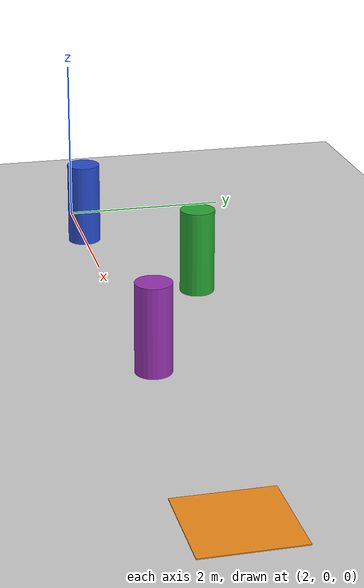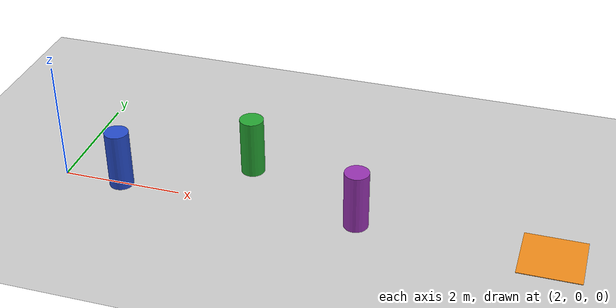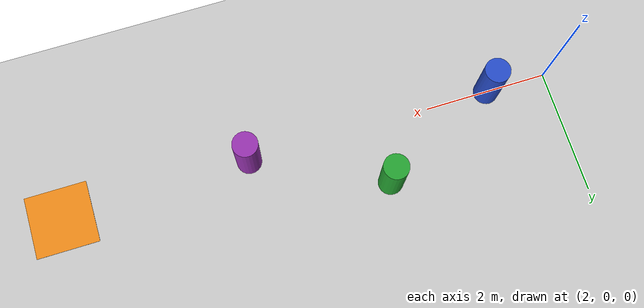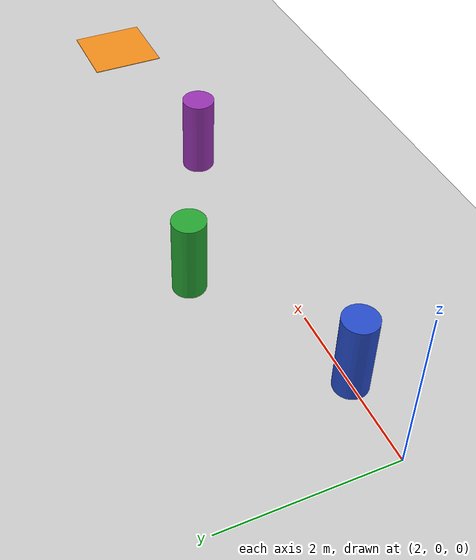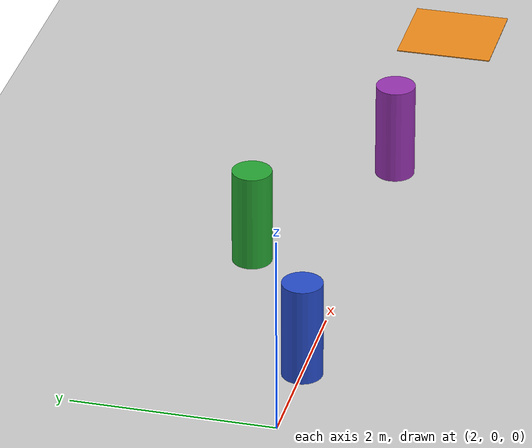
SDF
<sdf version="1.4">
 <world name="default">
  <light name="sun" type="directional">
   <pose>0 0 10 0 -0 0</pose>
   <diffuse>0.8 0.8 0.8 1</diffuse>
   <specular>0.2 0.2 0.2 1</specular>
   <attenuation>
    <range>1000</range>
    <constant>0.9</constant>
    <linear>0.01</linear>
    <quadratic>0.001</quadratic>
   </attenuation>
   <direction>-0.5 0.1 -0.9</direction>
  </light>
  <model name="ground_plane">
   <static>1</static>
   <link name="link">
    <collision name="collision">
     <geometry><plane><normal>0 0 1</normal><size>100 100</size></plane></geometry>
     <surface><friction><ode><mu>100</mu><mu2>50</mu2></ode></friction></surface>
    </collision>
    <visual name="visual">
     <cast_shadows>0</cast_shadows>
     <geometry><plane><normal>0 0 1</normal><size>100 100</size></plane></geometry>
     <material>
      <script><uri>file://media/materials/scripts/gazebo.material</uri><name>Gazebo/Grey</name></script>
     </material>
    </visual>
    <velocity_decay><linear>0</linear><angular>0</angular></velocity_decay>
   </link>
  </model>
  <physics type="ode">
   <max_step_size>0.001</max_step_size>
   <real_time_factor>1</real_time_factor>
   <real_time_update_rate>1000</real_time_update_rate>
   <gravity>0 0 -9.8</gravity>
  </physics>
  <scene><ambient>0.4 0.4 0.4 1</ambient><background>0.7 0.7 0.7 1</background><shadows>1</shadows></scene>
  <model name="unit_cylinder_1">
   <pose>3 0 0.499998 0 -0 0</pose>
   <link name="link">
    <inertial>
     <mass>1</mass>
     <inertia><ixx>1</ixx><ixy>0</ixy><ixz>0</ixz><iyy>1</iyy><iyz>0</iyz><izz>1</izz></inertia>
    </inertial>
    <collision name="collision">
     <geometry><cylinder><radius>0.2</radius><length>1</length></cylinder></geometry>
    </collision>
    <visual name="visual">
     <geometry><cylinder><radius>0.2</radius><length>1</length></cylinder></geometry>
     <material>
      <script><uri>file://media/materials/scripts/gazebo.material</uri><name>Gazebo/Blue</name></script>
     </material>
    </visual>
    <velocity_decay><linear>0</linear><angular>0</angular></velocity_decay>
   </link>
   <static>0</static>
  </model>
  <model name="unit_cylinder_2">
   <pose>4.95801 0.981055 0.499999 0 -0 0</pose>
   <link name="link">
    <inertial>
     <mass>1</mass>
     <inertia><ixx>1</ixx><ixy>0</ixy><ixz>0</ixz><iyy>1</iyy><iyz>0</iyz><izz>1</izz></inertia>
    </inertial>
    <collision name="collision">
     <geometry><cylinder><radius>0.2</radius><length>1</length></cylinder></geometry>
    </collision>
    <visual name="visual">
     <geometry><cylinder><radius>0.2</radius><length>1</length></cylinder></geometry>
     <material>
      <script><uri>file://media/materials/scripts/gazebo.material</uri><name>Gazebo/Green</name></script>
     </material>
    </visual>
    <velocity_decay><linear>0</linear><angular>0</angular></velocity_decay>
   </link>
   <static>0</static>
  </model>
  <model name="unit_cylinder_1_0">
   <pose>7 0 0.499992 0 -0 0</pose>
   <link name="link">
    <inertial>
     <mass>1</mass>
     <inertia><ixx>1</ixx><ixy>0</ixy><ixz>0</ixz><iyy>1</iyy><iyz>0</iyz><izz>1</izz></inertia>
    </inertial>
    <collision name="collision">
     <geometry><cylinder><radius>0.2</radius><length>1</length></cylinder></geometry>
    </collision>
    <visual name="visual">
     <geometry><cylinder><radius>0.2</radius><length>1</length></cylinder></geometry>
     <material>
      <script><uri>file://media/materials/scripts/gazebo.material</uri><name>Gazebo/Purple</name></script>
     </material>
    </visual>
    <velocity_decay><linear>0</linear><angular>0</angular></velocity_decay>
   </link>
   <static>0</static>
  </model>
  <model name="unit_box_1">
   <pose>10.0646 0.048904 0.005 0 -0 0</pose>
   <link name="link">
    <inertial>
     <mass>1</mass>
     <inertia><ixx>1</ixx><ixy>0</ixy><ixz>0</ixz><iyy>1</iyy><iyz>0</iyz><izz>1</izz></inertia>
    </inertial>
    <collision name="collision"><geometry><box><size>1 1 0.01</size></box></geometry></collision>
    <visual name="visual">
     <geometry><box><size>1 1 0.01</size></box></geometry>
     <material>
      <script><uri>file://media/materials/scripts/gazebo.material</uri><name>Gazebo/Orange</name></script>
     </material>
    </visual>
    <velocity_decay><linear>0</linear><angular>0</angular></velocity_decay>
   </link>
   <static>0</static>
  </model>
 </world>
</sdf>
